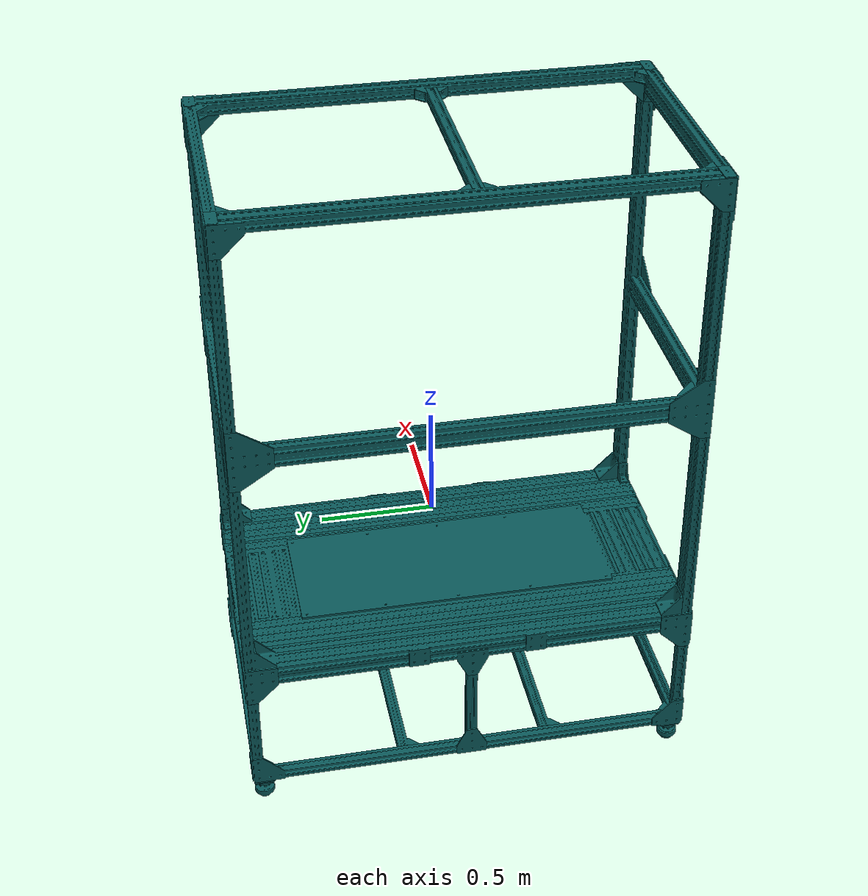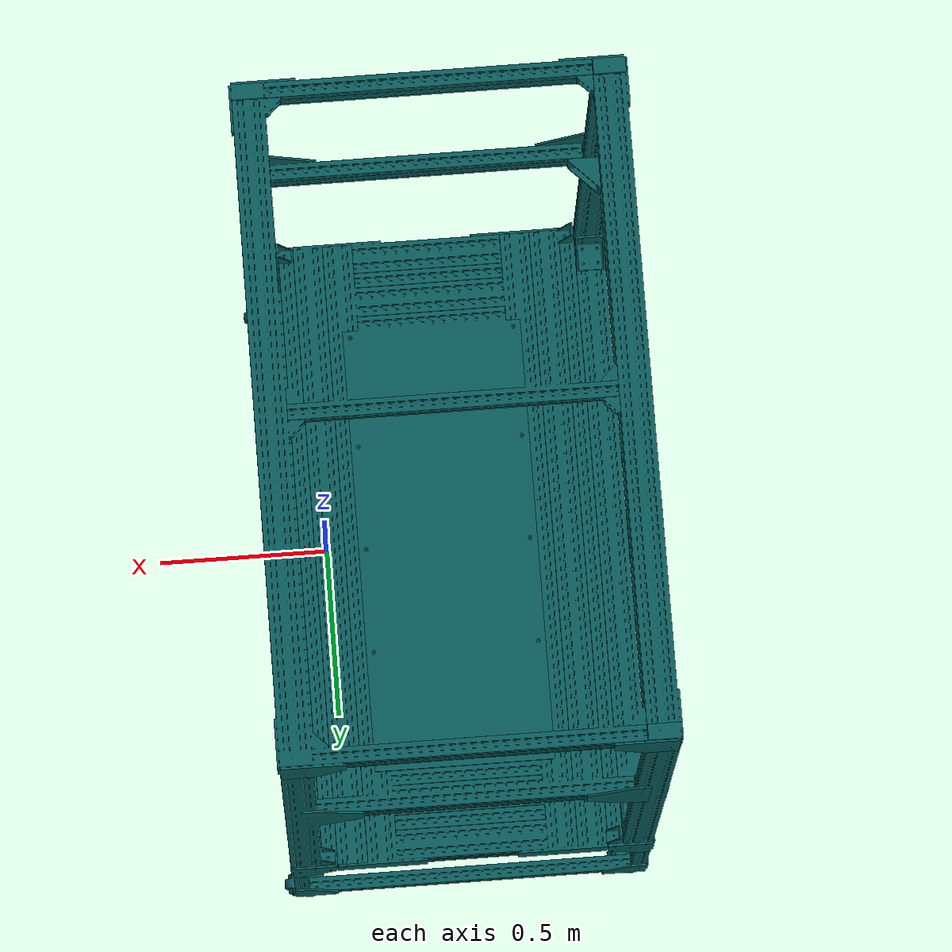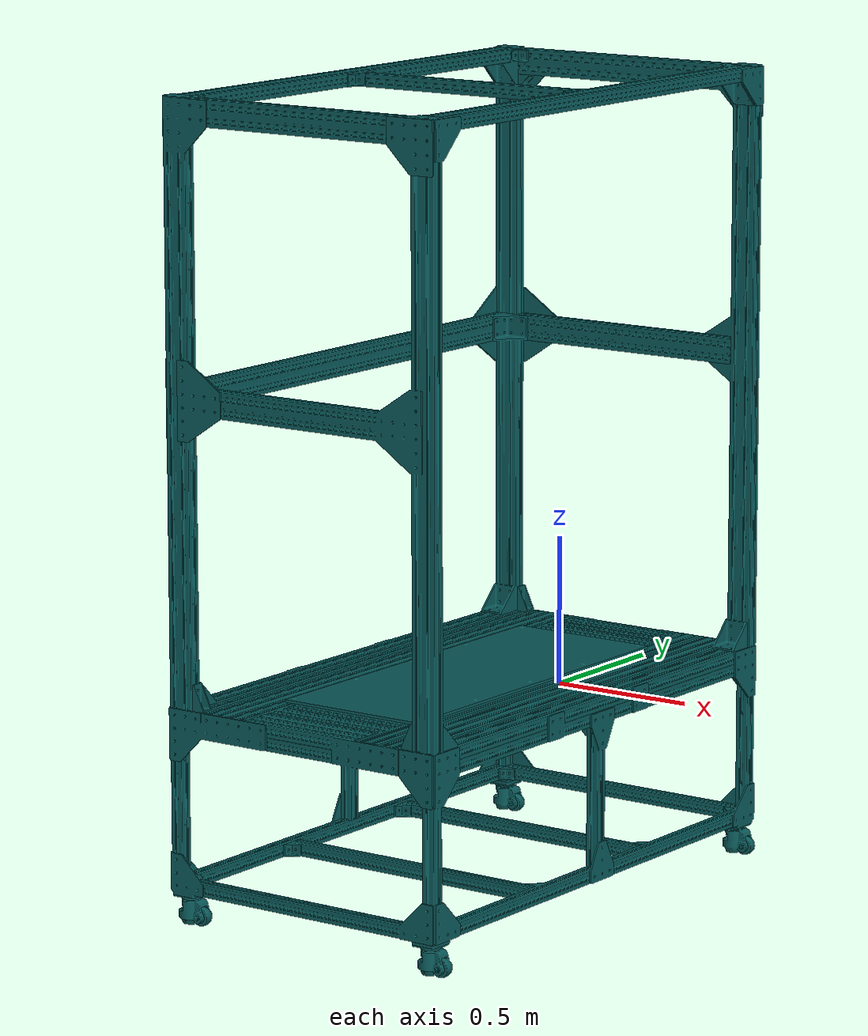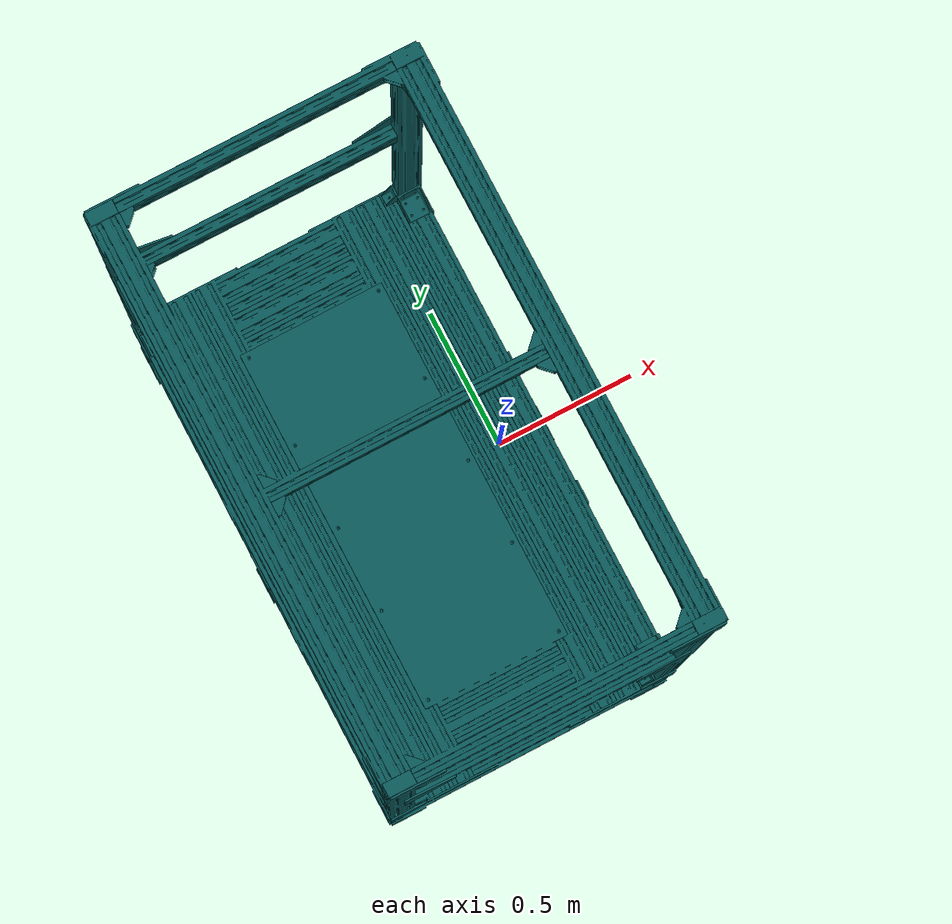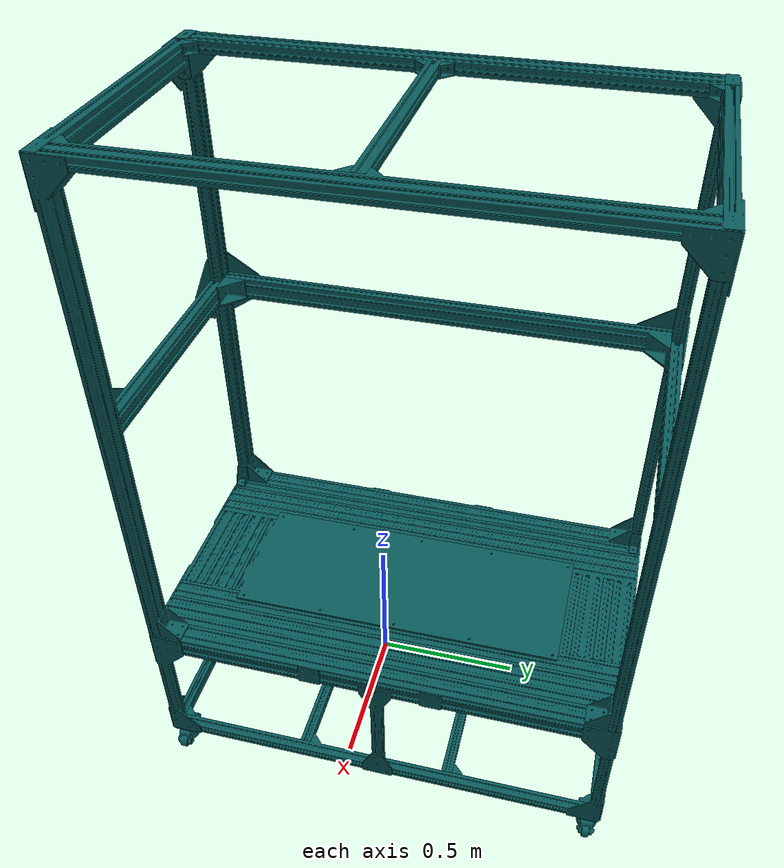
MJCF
<mujoco model="table_environment">
  <asset>
    <!-- The STL was exported in millimetres; MuJoCo uses metres. -->
    <!-- MuJoCo limits STL assets to 200,000 faces, so the visual mesh is
         losslessly divided into three pieces. -->
    <mesh
      name="table_visual_mesh_1"
      file="/Users/joey/Projects/remu/table_lowres_1.stl"
      scale="0.001 0.001 0.001"
      maxhullvert="64"/>
    <mesh
      name="table_visual_mesh_2"
      file="/Users/joey/Projects/remu/table_lowres_2.stl"
      scale="0.001 0.001 0.001"
      maxhullvert="64"/>
    <mesh
      name="table_visual_mesh_3"
      file="/Users/joey/Projects/remu/table_lowres_3.stl"
      scale="0.001 0.001 0.001"
      maxhullvert="64"/>

    <!-- #095859, with PBR and native-renderer settings for anodized aluminum. -->
    <material
      name="anodized_aluminum"
      rgba="0.035294 0.345098 0.349020 1"
      metallic="1"
      roughness="0.28"
      specular="0.8"
      shininess="0.65"/>
  </asset>

  <worldbody>
    <!-- +90 degrees about Z: counterclockwise when viewed from above. -->
    <body name="table_environment_frame" quat="0.707106781 0 0 0.707106781">
      <!-- Keep the authored STL origin coincident with the robot/world origin. -->
      <geom
        name="table_visual_1"
        type="mesh"
        mesh="table_visual_mesh_1"
        material="anodized_aluminum"
        pos="0 0 0"
        quat="1 0 0 0"
        contype="0"
        conaffinity="0"
        group="2"/>
      <geom
        name="table_visual_2"
        type="mesh"
        mesh="table_visual_mesh_2"
        material="anodized_aluminum"
        pos="0 0 0"
        quat="1 0 0 0"
        contype="0"
        conaffinity="0"
        group="2"/>
      <geom
        name="table_visual_3"
        type="mesh"
        mesh="table_visual_mesh_3"
        material="anodized_aluminum"
        pos="0 0 0"
        quat="1 0 0 0"
        contype="0"
        conaffinity="0"
        group="2"/>

    <!--
      Collision bounds:
        min = (-0.9440, -0.1769, -0.0310)
        max = ( 0.9450,  0.9091,  0.0000)

      MuJoCo box size values are half-extents.
    -->
      <geom
        name="table_collision"
        type="box"
        pos="0.0005 0.3661 -0.0155"
        size="0.9445 0.5430 0.0155"
        contype="1"
        conaffinity="1"
        friction="0.8 0.02 0.002"
        rgba="0 0 0 0"
        group="3"/>
    </body>
  </worldbody>
</mujoco>
